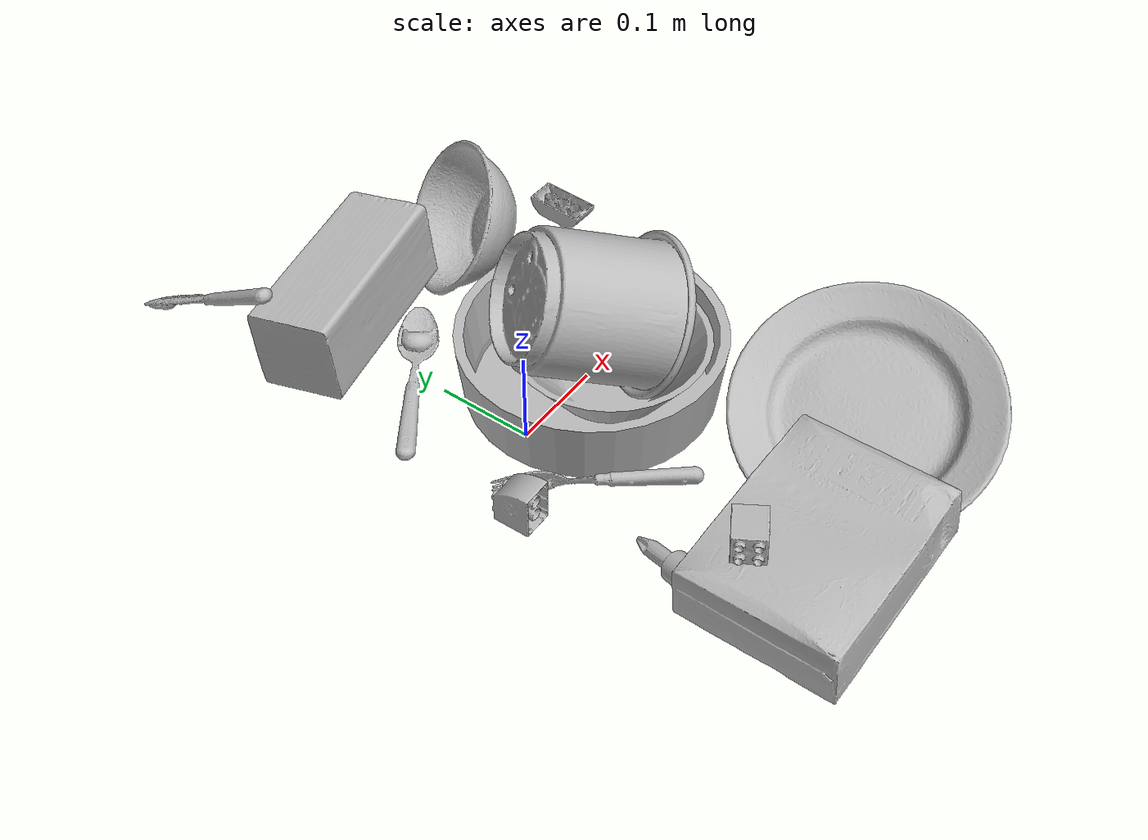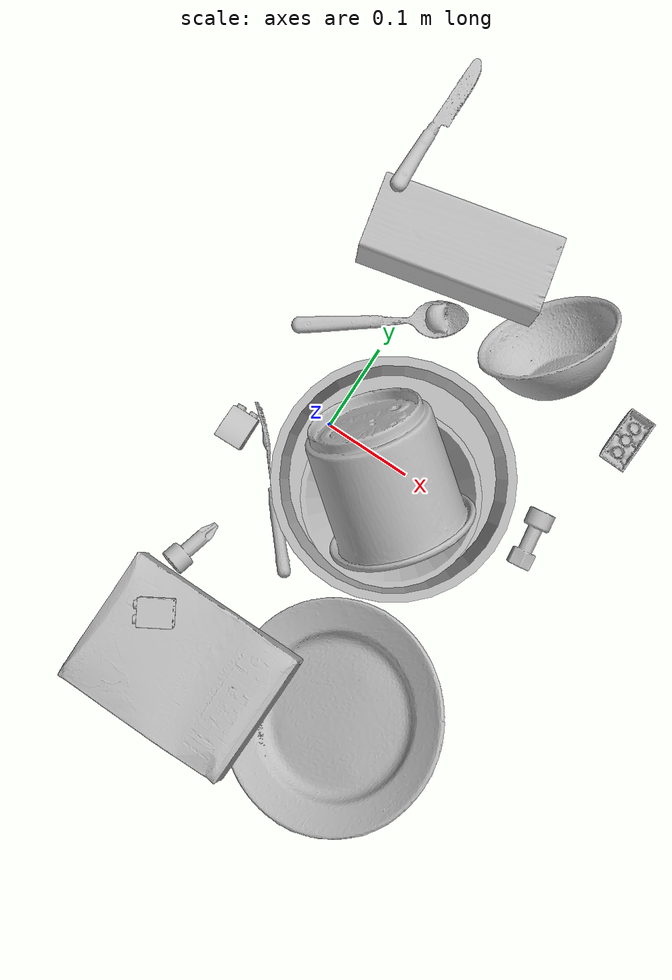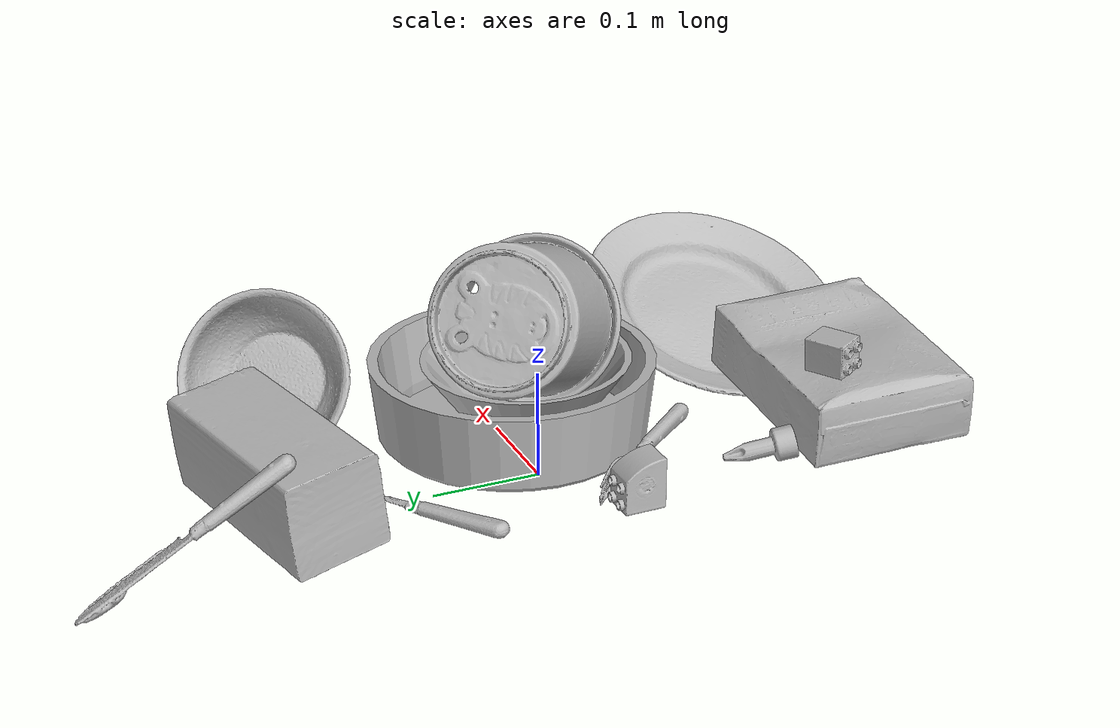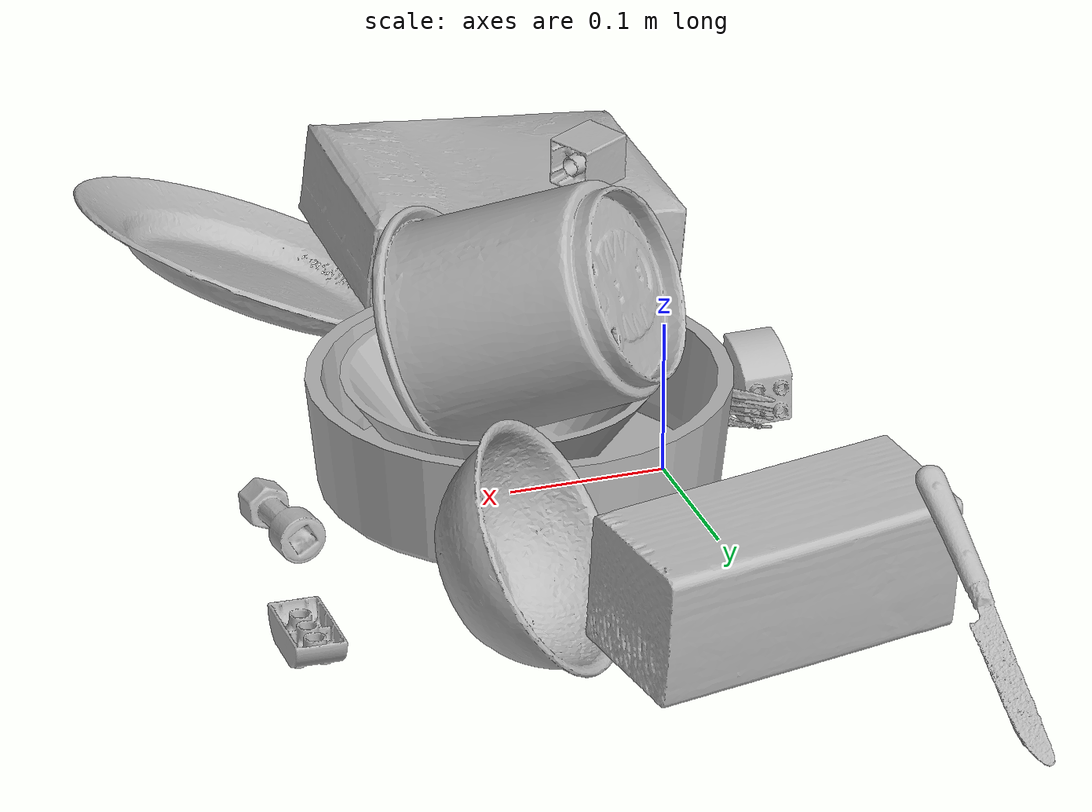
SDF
<sdf version="1.4">
  <world name="default">
    <light name="light1" type="point">
      <pose>0 0 1 0 0 0</pose>
      <diffuse>3 3 3 1</diffuse>
      <specular>3 3 3 1</specular>
    </light>
    <light name="light2" type="point">
      <pose>0 0.5 2 0 0 0</pose>
      <diffuse>1 1 1 1</diffuse>
      <specular>1 1 1 1</specular>
    </light>
    <light name="light3" type="point">
      <pose>0 0.5 2 0 0 0</pose>
      <diffuse>3 3 3 1</diffuse>
      <specular>3 3 3 1</specular>
    </light>
    <scene>
      <ambient>0.7 0.7 0.7</ambient>
    </scene>
    <model name="plate1">
      <link name="link_plate1">
        <collision name="default">
          <geometry>
            <mesh>
              <uri>model://pan_tefal/collision_meshes/collision.obj</uri>
              <scale>1.0 1.0 1.0</scale>
            </mesh>
          </geometry>
          <surface>
            <friction>
              <ode>
                <mu>0.5</mu>
                <mu2>0.5</mu2>
              </ode>
            </friction>
          <contact>
        <ode>
            <max_vel>0</max_vel>
            <min_depth>0.0001</min_depth>
            <kp>1e8</kp>
        </ode>
    </contact></surface>
        </collision>
        <visual name="default">
          <geometry>
            <mesh>
              <uri>model://pan_tefal/visual_meshes/visual.dae</uri>
              <scale>1.0 1.0 1.0</scale>
            </mesh>
          </geometry>
        </visual>
        <inertial>
          <mass>1.083925485610962</mass>
          <pose>-0.00018002053548116237 3.279013617429882e-05 -0.00851493701338768 0.000819031166138591 -0.00033013701589440335 -0.33186472787035126</pose>
          <inertia>
            <ixx>0.0074822875</ixx>
            <iyy>0.0075305253</iyy>
            <izz>0.013773448</izz>
            <ixy>0</ixy>
            <ixz>0</ixz>
            <iyz>0</iyz>
          </inertia>
        </inertial>
      </link>
      <pose>0.0904030054807663 -0.011763145215809345 0.03805021941661835 4.278794977026015e-06 3.825855588323452e-06 2.6740811688319486</pose>
    </model>
    <model name="plate2">
      <link name="link_plate2">
        <collision name="default">
          <geometry>
            <mesh>
              <uri>model://plate/collision_meshes/collision.obj</uri>
              <scale>1.0 1.0 1.0</scale>
            </mesh>
          </geometry>
          <surface>
            <friction>
              <ode>
                <mu>0.5</mu>
                <mu2>0.5</mu2>
              </ode>
            </friction>
          <contact>
        <ode>
            <max_vel>0</max_vel>
            <min_depth>0.0001</min_depth>
            <kp>1e8</kp>
        </ode>
    </contact></surface>
        </collision>
        <visual name="default">
          <geometry>
            <mesh>
              <uri>model://plate/visual_meshes/visual.dae</uri>
              <scale>1.0 1.0 1.0</scale>
            </mesh>
          </geometry>
        </visual>
        <inertial>
          <mass>0.26740342378616333</mass>
          <pose>-0.00060446304269135 0.00027825793949887156 -0.0010561994276940823 0.0022187903743134635 -0.0032254779444460427 0.4526079808055429</pose>
          <inertia>
            <ixx>0.0012509191</ixx>
            <iyy>0.0012389544</iyy>
            <izz>0.00244661</izz>
            <ixy>0</ixy>
            <ixz>0</ixz>
            <iyz>0</iyz>
          </inertia>
        </inertial>
      </link>
      <pose>0.1794411987066269 -0.26398831605911255 0.04448959603905678 -0.40723557936780436 -0.01763576248426527 1.757194879682447</pose>
    </model>
    <model name="bowl1">
      <link name="link_bowl1">
        <collision name="default">
          <geometry>
            <mesh>
              <uri>model://bowl/collision_meshes/collision.obj</uri>
              <scale>1.0 1.0 1.0</scale>
            </mesh>
          </geometry>
          <surface>
            <friction>
              <ode>
                <mu>0.5</mu>
                <mu2>0.5</mu2>
              </ode>
            </friction>
          <contact>
        <ode>
            <max_vel>0</max_vel>
            <min_depth>0.0001</min_depth>
            <kp>1e8</kp>
        </ode>
    </contact></surface>
        </collision>
        <visual name="default">
          <geometry>
            <mesh>
              <uri>model://bowl/visual_meshes/visual.dae</uri>
              <scale>1.0 1.0 1.0</scale>
            </mesh>
          </geometry>
        </visual>
        <inertial>
          <mass>0.062040042132139206</mass>
          <pose>0.00020445157133508474 -0.001030211104080081 -0.0008042659028433263 -0.01576411046463803 0.014546752923574583 0.7140383763158871</pose>
          <inertia>
            <ixx>0.00014251085</ixx>
            <iyy>0.0001393266</iyy>
            <izz>0.00023975229</izz>
            <ixy>0</ixy>
            <ixz>0</ixz>
            <iyz>0</iyz>
          </inertia>
        </inertial>
      </link>
      <pose>0.1638045758008957 0.19536443054676056 0.059269871562719345 0.8721180544491106 -0.7241045681678189 -1.6457813543394366</pose>
    </model>
    <model name="bowl2">
      <link name="link_bowl2">
        <collision name="default">
          <geometry>
            <mesh>
              <uri>model://bowl_a/collision_meshes/collision.obj</uri>
              <scale>1.0 1.0 1.0</scale>
            </mesh>
          </geometry>
          <surface>
            <friction>
              <ode>
                <mu>0.5</mu>
                <mu2>0.5</mu2>
              </ode>
            </friction>
          <contact>
        <ode>
            <max_vel>0</max_vel>
            <min_depth>0.0001</min_depth>
            <kp>1e8</kp>
        </ode>
    </contact></surface>
        </collision>
        <visual name="default">
          <geometry>
            <mesh>
              <uri>model://bowl_a/visual_meshes/visual.dae</uri>
              <scale>1.0 1.0 1.0</scale>
            </mesh>
          </geometry>
        </visual>
        <inertial>
          <mass>0.2882154881954193</mass>
          <pose>0.00027867534663528204 4.731079752673395e-05 -0.0013765293406322598 -0.0009805311525578244 -0.0010938248781945461 -0.19124031319294812</pose>
          <inertia>
            <ixx>0.00082056265</ixx>
            <iyy>0.0008256004</iyy>
            <izz>0.001459402</izz>
            <ixy>0</ixy>
            <ixz>0</ixz>
            <iyz>0</iyz>
          </inertia>
        </inertial>
      </link>
      <pose>0.09866522252559662 -0.029535142704844475 0.038898032158613205 0.01887977851556386 -0.004333649799866669 -2.752872911748155</pose>
    </model>
    <model name="silverware1">
      <link name="link_silverware1">
        <collision name="default">
          <geometry>
            <mesh>
              <uri>model://fork/collision_meshes/collision.obj</uri>
              <scale>1.0 1.0 1.0</scale>
            </mesh>
          </geometry>
          <surface>
            <friction>
              <ode>
                <mu>0.5</mu>
                <mu2>0.5</mu2>
              </ode>
            </friction>
          <contact>
        <ode>
            <max_vel>0</max_vel>
            <min_depth>0.0001</min_depth>
            <kp>1e8</kp>
        </ode>
    </contact></surface>
        </collision>
        <visual name="default">
          <geometry>
            <mesh>
              <uri>model://fork/visual_meshes/visual.dae</uri>
              <scale>1.0 1.0 1.0</scale>
            </mesh>
          </geometry>
        </visual>
        <inertial>
          <mass>0.01398836076259613</mass>
          <pose>-0.02957003563642502 0.00046588244731538 0.0003218861238565296 -0.013550934691899108 -0.010977833142804767 0.01445389655901604</pose>
          <inertia>
            <ixx>4.903713e-07</ixx>
            <iyy>3.6519592e-05</iyy>
            <izz>3.673893e-05</izz>
            <ixy>0</ixy>
            <ixz>0</ixz>
            <iyz>0</iyz>
          </inertia>
        </inertial>
      </link>
      <pose>-0.01323743537068367 -0.09412214159965515 0.012492196634411812 -1.589546727405183 -0.03499467477934055 2.277064210889871</pose>
    </model>
    <model name="box1">
      <link name="link_box1">
        <collision name="default">
          <geometry>
            <mesh>
              <uri>model://cracker_box/collision_meshes/collision.obj</uri>
              <scale>1.0 1.0 1.0</scale>
            </mesh>
          </geometry>
          <surface>
            <friction>
              <ode>
                <mu>0.5</mu>
                <mu2>0.5</mu2>
              </ode>
            </friction>
          <contact>
        <ode>
            <max_vel>0</max_vel>
            <min_depth>0.0001</min_depth>
            <kp>1e8</kp>
        </ode>
    </contact></surface>
        </collision>
        <visual name="default">
          <geometry>
            <mesh>
              <uri>model://cracker_box/visual_meshes/visual.dae</uri>
              <scale>1.0 1.0 1.0</scale>
            </mesh>
          </geometry>
        </visual>
        <inertial>
          <mass>3.3038947582244873</mass>
          <pose>0.0009464139584451914 0.00025434247800149024 -0.0017029535956680775 -0.00031620753779881404 -0.011106489600569465 0.002546794535826719</pose>
          <inertia>
            <ixx>0.008403633</ixx>
            <iyy>0.013876048</iyy>
            <izz>0.019802397</izz>
            <ixy>0</ixy>
            <ixz>0</ixz>
            <iyz>0</iyz>
          </inertia>
        </inertial>
      </link>
      <pose>0.00887387152761221 -0.30978554487228394 0.04415683448314667 0.018469682054825343 0.09272800173348594 3.129024186652605</pose>
    </model>
    <model name="box2">
      <link name="link_box2">
        <collision name="default">
          <geometry>
            <mesh>
              <uri>model://wood_block/collision_meshes/collision.obj</uri>
              <scale>1.0 1.0 1.0</scale>
            </mesh>
          </geometry>
          <surface>
            <friction>
              <ode>
                <mu>0.5</mu>
                <mu2>0.5</mu2>
              </ode>
            </friction>
          <contact>
        <ode>
            <max_vel>0</max_vel>
            <min_depth>0.0001</min_depth>
            <kp>1e8</kp>
        </ode>
    </contact></surface>
        </collision>
        <visual name="default">
          <geometry>
            <mesh>
              <uri>model://wood_block/visual_meshes/visual.dae</uri>
              <scale>1.0 1.0 1.0</scale>
            </mesh>
          </geometry>
        </visual>
        <inertial>
          <mass>1.8317598104476929</mass>
          <pose>-5.813315510749817e-06 -0.000570809468626976 0.0002640858292579651 -0.05220774405774941 -0.005192695034541599 -0.006861378043904631</pose>
          <inertia>
            <ixx>0.0024511719</ixx>
            <iyy>0.0077432534</iyy>
            <izz>0.007714289</izz>
            <ixy>0</ixy>
            <ixz>0</ixz>
            <iyz>0</iyz>
          </inertia>
        </inertial>
      </link>
      <pose>0.014065947383642197 0.23547425866127014 0.048645805567502975 -1.6789234618807747 -1.5640368371936765e-06 0.218804482108737</pose>
    </model>
    <model name="cup1">
      <link name="link_cup1">
        <collision name="default">
          <geometry>
            <mesh>
              <uri>model://f_cups/collision_meshes/collision.obj</uri>
              <scale>2.0 2.0 2.0</scale>
            </mesh>
          </geometry>
          <surface>
            <friction>
              <ode>
                <mu>0.5</mu>
                <mu2>0.5</mu2>
              </ode>
            </friction>
          <contact>
        <ode>
            <max_vel>0</max_vel>
            <min_depth>0.0001</min_depth>
            <kp>1e8</kp>
        </ode>
    </contact></surface>
        </collision>
        <visual name="default">
          <geometry>
            <mesh>
              <uri>model://f_cups/visual_meshes/visual.dae</uri>
              <scale>2.0 2.0 2.0</scale>
            </mesh>
          </geometry>
        </visual>
        <inertial>
          <mass>0.8281989693641663</mass>
          <pose>-0.006342937704175711 -0.0012480166042223573 -0.007311076857149601 0.7862278170542254 -0.2607923358756499 -0.18237381375543787</pose>
          <inertia>
            <ixx>0.003114117</ixx>
            <iyy>0.0032667436</iyy>
            <izz>0.0034007723</izz>
            <ixy>0</ixy>
            <ixz>0</ixz>
            <iyz>0</iyz>
          </inertia>
        </inertial>
      </link>
      <pose>0.07882548868656158 -0.013505382463335991 0.116207055747509 2.2860461886977435 -0.9365349762313482 0.30325781544400304</pose>
    </model>
    <model name="silverware2">
      <link name="link_silverware2">
        <collision name="default">
          <geometry>
            <mesh>
              <uri>model://knife/collision_meshes/collision.obj</uri>
              <scale>1.0 1.0 1.0</scale>
            </mesh>
          </geometry>
          <surface>
            <friction>
              <ode>
                <mu>0.5</mu>
                <mu2>0.5</mu2>
              </ode>
            </friction>
          <contact>
        <ode>
            <max_vel>0</max_vel>
            <min_depth>0.0001</min_depth>
            <kp>1e8</kp>
        </ode>
    </contact></surface>
        </collision>
        <visual name="default">
          <geometry>
            <mesh>
              <uri>model://knife/visual_meshes/visual.dae</uri>
              <scale>1.0 1.0 1.0</scale>
            </mesh>
          </geometry>
        </visual>
        <inertial>
          <mass>0.033610157668590546</mass>
          <pose>-0.02378525771200657 0.0015275131445378065 5.0620201363926753e-05 0.07305356746503441 0.01724842347870745 -0.0074098216508425</pose>
          <inertia>
            <ixx>9.539925e-07</ixx>
            <iyy>0.00012912478</iyy>
            <izz>0.00012943202</izz>
            <ixy>0</ixy>
            <ixz>0</ixz>
            <iyz>0</iyz>
          </inertia>
        </inertial>
      </link>
      <pose>-0.07932820171117783 0.33761847019195557 0.05314414203166962 0.11675565623172267 0.5128265082849952 1.6003202114578783</pose>
    </model>
    <model name="silverware3">
      <link name="link_silverware3">
        <collision name="default">
          <geometry>
            <mesh>
              <uri>model://spoon/collision_meshes/collision.obj</uri>
              <scale>1.0 1.0 1.0</scale>
            </mesh>
          </geometry>
          <surface>
            <friction>
              <ode>
                <mu>0.5</mu>
                <mu2>0.5</mu2>
              </ode>
            </friction>
          <contact>
        <ode>
            <max_vel>0</max_vel>
            <min_depth>0.0001</min_depth>
            <kp>1e8</kp>
        </ode>
    </contact></surface>
        </collision>
        <visual name="default">
          <geometry>
            <mesh>
              <uri>model://spoon/visual_meshes/visual.dae</uri>
              <scale>1.0 1.0 1.0</scale>
            </mesh>
          </geometry>
        </visual>
        <inertial>
          <mass>0.03036251850426197</mass>
          <pose>-0.005526314955204725 -0.0016034168656915426 -0.0007271655485965312 0.035217258575681115 -0.03906584346489495 0.006150616147242728</pose>
          <inertia>
            <ixx>1.6888126e-06</ixx>
            <iyy>0.00011552838</iyy>
            <izz>0.00011636122</izz>
            <ixy>0</ixy>
            <ixz>0</ixz>
            <iyz>0</iyz>
          </inertia>
        </inertial>
      </link>
      <pose>-0.017335178330540657 0.12823820114135742 0.00838526152074337 0.006729187129963489 0.026892991926102314 0.6218656698740113</pose>
    </model>
    <model name="toy1">
      <link name="link_toy1">
        <collision name="default">
          <geometry>
            <mesh>
              <uri>model://d_lego_duplo/collision_meshes/collision.obj</uri>
              <scale>1.0 1.0 1.0</scale>
            </mesh>
          </geometry>
          <surface>
            <friction>
              <ode>
                <mu>0.5</mu>
                <mu2>0.5</mu2>
              </ode>
            </friction>
          <contact>
        <ode>
            <max_vel>0</max_vel>
            <min_depth>0.0001</min_depth>
            <kp>1e8</kp>
        </ode>
    </contact></surface>
        </collision>
        <visual name="default">
          <geometry>
            <mesh>
              <uri>model://d_lego_duplo/visual_meshes/visual.dae</uri>
              <scale>1.0 1.0 1.0</scale>
            </mesh>
          </geometry>
        </visual>
        <inertial>
          <mass>0.05888136848807335</mass>
          <pose>0.00283056334592402 0.00016366125782951713 0.0008589810458943248 0.0801088994423302 -0.3835518637869403 0.0010296847698221781</pose>
          <inertia>
            <ixx>1.1398561e-05</ixx>
            <iyy>1.6177655e-05</iyy>
            <izz>1.5601077e-05</izz>
            <ixy>0</ixy>
            <ixz>0</ixz>
            <iyz>0</iyz>
          </inertia>
        </inertial>
      </link>
      <pose>-0.08343709260225296 -0.05630416423082352 0.02419700287282467 2.1925632224038254 1.570795239558349 -2.5030653084512444</pose>
    </model>
    <model name="toy2">
      <link name="link_toy2">
        <collision name="default">
          <geometry>
            <mesh>
              <uri>model://d_toy_airplane/collision_meshes/collision.obj</uri>
              <scale>1.0 1.0 1.0</scale>
            </mesh>
          </geometry>
          <surface>
            <friction>
              <ode>
                <mu>0.5</mu>
                <mu2>0.5</mu2>
              </ode>
            </friction>
          <contact>
        <ode>
            <max_vel>0</max_vel>
            <min_depth>0.0001</min_depth>
            <kp>1e8</kp>
        </ode>
    </contact></surface>
        </collision>
        <visual name="default">
          <geometry>
            <mesh>
              <uri>model://d_toy_airplane/visual_meshes/visual.dae</uri>
              <scale>1.0 1.0 1.0</scale>
            </mesh>
          </geometry>
        </visual>
        <inertial>
          <mass>0.019283337518572807</mass>
          <pose>9.410297934664413e-05 -5.809335198136978e-05 -0.011728096753358841 0.00026677547083937895 0.00467899750463603 0.5194224971352938</pose>
          <inertia>
            <ixx>5.7807692e-06</ixx>
            <iyy>5.78513e-06</iyy>
            <izz>1.7452522e-06</izz>
            <ixy>0</ixy>
            <ixz>0</ixz>
            <iyz>0</iyz>
          </inertia>
        </inertial>
      </link>
      <pose>-0.05337955057621002 -0.19284126162528992 0.011741209775209427 -1.9079249497348725 -0.9252621770714132 0.005859328381463846</pose>
    </model>
    <model name="toy3">
      <link name="link_toy3">
        <collision name="default">
          <geometry>
            <mesh>
              <uri>model://b_lego_duplo/collision_meshes/collision.obj</uri>
              <scale>1.0 1.0 1.0</scale>
            </mesh>
          </geometry>
          <surface>
            <friction>
              <ode>
                <mu>0.5</mu>
                <mu2>0.5</mu2>
              </ode>
            </friction>
          <contact>
        <ode>
            <max_vel>0</max_vel>
            <min_depth>0.0001</min_depth>
            <kp>1e8</kp>
        </ode>
    </contact></surface>
        </collision>
        <visual name="default">
          <geometry>
            <mesh>
              <uri>model://b_lego_duplo/visual_meshes/visual.dae</uri>
              <scale>1.0 1.0 1.0</scale>
            </mesh>
          </geometry>
        </visual>
        <inertial>
          <mass>0.03460631147027016</mass>
          <pose>-0.00011053022171836346 -9.15238524612505e-06 0.0019294291269034147 -0.037494934713503944 -0.026353982766830427 0.45190023703794546</pose>
          <inertia>
            <ixx>7.082442e-06</ixx>
            <iyy>7.1300533e-06</iyy>
            <izz>6.310225e-06</izz>
            <ixy>0</ixy>
            <ixz>0</ixz>
            <iyz>0</iyz>
          </inertia>
        </inertial>
      </link>
      <pose>-0.045122068375349045 -0.270468145608902 0.08886640518903732 1.3294746017607404 1.5282003686975179 -1.2911576049120643</pose>
    </model>
    <model name="toy4">
      <link name="link_toy4">
        <collision name="default">
          <geometry>
            <mesh>
              <uri>model://c_toy_airplane/collision_meshes/collision.obj</uri>
              <scale>1.0 1.0 1.0</scale>
            </mesh>
          </geometry>
          <surface>
            <friction>
              <ode>
                <mu>0.5</mu>
                <mu2>0.5</mu2>
              </ode>
            </friction>
          <contact>
        <ode>
            <max_vel>0</max_vel>
            <min_depth>0.0001</min_depth>
            <kp>1e8</kp>
        </ode>
    </contact></surface>
        </collision>
        <visual name="default">
          <geometry>
            <mesh>
              <uri>model://c_toy_airplane/visual_meshes/visual.dae</uri>
              <scale>1.0 1.0 1.0</scale>
            </mesh>
          </geometry>
        </visual>
        <inertial>
          <mass>0.03008922003209591</mass>
          <pose>-0.00023024248366709799 -4.429292062013701e-07 -0.006080532446503639 -0.006192764609865116 -0.016797726061543002 0.7654936540566961</pose>
          <inertia>
            <ixx>1.3816358e-05</ixx>
            <iyy>1.3777365e-05</iyy>
            <izz>3.2438072e-06</izz>
            <ixy>0</ixy>
            <ixz>0</ixz>
            <iyz>0</iyz>
          </inertia>
        </inertial>
      </link>
      <pose>0.25387006998062134 0.016518857330083847 0.014900293201208115 1.6792059386890097 1.3930099106506095 0.24839275432172814</pose>
    </model>
    <model name="toy5">
      <link name="link_toy5">
        <collision name="default">
          <geometry>
            <mesh>
              <uri>model://a_lego_duplo/collision_meshes/collision.obj</uri>
              <scale>1.0 1.0 1.0</scale>
            </mesh>
          </geometry>
          <surface>
            <friction>
              <ode>
                <mu>0.5</mu>
                <mu2>0.5</mu2>
              </ode>
            </friction>
          <contact>
        <ode>
            <max_vel>0</max_vel>
            <min_depth>0.0001</min_depth>
            <kp>1e8</kp>
        </ode>
    </contact></surface>
        </collision>
        <visual name="default">
          <geometry>
            <mesh>
              <uri>model://a_lego_duplo/visual_meshes/visual.dae</uri>
              <scale>1.0 1.0 1.0</scale>
            </mesh>
          </geometry>
        </visual>
        <inertial>
          <mass>0.02472195029258728</mass>
          <pose>-0.00011337580508552492 0.00018517558055464178 0.0003692609316203743 -0.014116968053030856 -0.00012565531185804749 6.140757465531037e-05</pose>
          <inertia>
            <ixx>3.1695524e-06</ixx>
            <iyy>7.100487e-06</iyy>
            <izz>8.795534e-06</izz>
            <ixy>0</ixy>
            <ixz>0</ixz>
            <iyz>0</iyz>
          </inertia>
        </inertial>
      </link>
      <pose>0.2829027771949768 0.1657782942056656 0.0121248047798872 -3.1412844329921303 -0.015581763482482112 1.5388386298972416</pose>
    </model>
  <physics type="ode">
      <max_contacts>50</max_contacts>
      <ode>
        <solver>
          <type>quick</type>
          <iters>75</iters>
        </solver>
        <constraints>
          <contact_max_correcting_vel>0</contact_max_correcting_vel>
          <contact_surface_layer>0</contact_surface_layer>
        </constraints>
      </ode>
    </physics></world>
</sdf>
